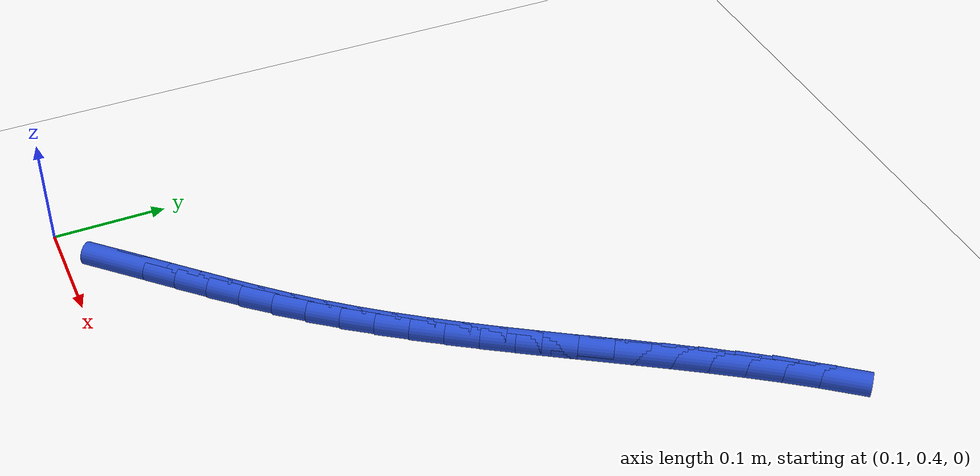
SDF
<sdf version="1.6">
 <world name="default">
  <model name="ground_plane">
   <static>1</static>
   <link name="link">
    <collision name="collision">
     <geometry><plane><normal>0 0 1</normal><size>100 100</size></plane></geometry>
     <surface><friction><ode><mu>100</mu><mu2>50</mu2></ode></friction></surface>
    </collision>
    <visual name="visual">
     <cast_shadows>0</cast_shadows>
     <geometry><plane><normal>0 0 1</normal><size>100 100</size></plane></geometry>
     <material>
      <script><uri>file://media/materials/scripts/gazebo.material</uri><name>Gazebo/WhiteGlow</name></script>
     </material>
    </visual>
   </link>
  </model>
  <model name="line">
   <link name="link_17">
    <pose>0.1712519552184155 0.4478693414919913 0.01 0 1.57 0.8027167475872313</pose>
    <collision name="collision">
     <geometry><cylinder><radius>0.01</radius><length>0.08</length></cylinder></geometry>
    </collision>
    <visual name="visual">
     <material>
      <script><name>Gazebo/Blue</name><uri>file://media/materials/scripts/gazebo.material</uri></script>
     </material>
     <geometry><cylinder><radius>0.01</radius><length>0.08</length></cylinder></geometry>
    </visual>
   </link>
   <link name="link_18">
    <pose>0.19212451881638715 0.46947768786923155 0.01 0 1.57 0.7991366152460926</pose>
    <collision name="collision">
     <geometry><cylinder><radius>0.01</radius><length>0.08</length></cylinder></geometry>
    </collision>
    <visual name="visual">
     <material>
      <script><name>Gazebo/Blue</name><uri>file://media/materials/scripts/gazebo.material</uri></script>
     </material>
     <geometry><cylinder><radius>0.01</radius><length>0.08</length></cylinder></geometry>
    </visual>
   </link>
   <link name="link_19">
    <pose>0.2131277063183702 0.4910660541997015 0.01 0 1.57 0.8032693308157284</pose>
    <collision name="collision">
     <geometry><cylinder><radius>0.01</radius><length>0.08</length></cylinder></geometry>
    </collision>
    <visual name="visual">
     <material>
      <script><name>Gazebo/Blue</name><uri>file://media/materials/scripts/gazebo.material</uri></script>
     </material>
     <geometry><cylinder><radius>0.01</radius><length>0.08</length></cylinder></geometry>
    </visual>
   </link>
   <link name="link_20">
    <pose>0.2340442954998635 0.5127439373765393 0.01 0 1.57 0.8151408192019713</pose>
    <collision name="collision">
     <geometry><cylinder><radius>0.01</radius><length>0.08</length></cylinder></geometry>
    </collision>
    <visual name="visual">
     <material>
      <script><name>Gazebo/Blue</name><uri>file://media/materials/scripts/gazebo.material</uri></script>
     </material>
     <geometry><cylinder><radius>0.01</radius><length>0.08</length></cylinder></geometry>
    </visual>
   </link>
   <link name="link_21">
    <pose>0.25465706413636585 0.5346208342928832 0.01 0 1.57 0.8348805298103994</pose>
    <collision name="collision">
     <geometry><cylinder><radius>0.01</radius><length>0.08</length></cylinder></geometry>
    </collision>
    <visual name="visual">
     <material>
      <script><name>Gazebo/Blue</name><uri>file://media/materials/scripts/gazebo.material</uri></script>
     </material>
     <geometry><cylinder><radius>0.01</radius><length>0.08</length></cylinder></geometry>
    </visual>
   </link>
   <link name="link_22">
    <pose>0.27474879000337593 0.5568062418418709 0.01 0 1.57 0.8626891926662084</pose>
    <collision name="collision">
     <geometry><cylinder><radius>0.01</radius><length>0.08</length></cylinder></geometry>
    </collision>
    <visual name="visual">
     <material>
      <script><name>Gazebo/Blue</name><uri>file://media/materials/scripts/gazebo.material</uri></script>
     </material>
     <geometry><cylinder><radius>0.01</radius><length>0.08</length></cylinder></geometry>
    </visual>
   </link>
   <link name="link_23">
    <pose>0.2941026314504822 0.5794094607349466 0.01 0 1.57 0.895433937974692</pose>
    <collision name="collision">
     <geometry><cylinder><radius>0.01</radius><length>0.08</length></cylinder></geometry>
    </collision>
    <visual name="visual">
     <material>
      <script><name>Gazebo/Blue</name><uri>file://media/materials/scripts/gazebo.material</uri></script>
     </material>
     <geometry><cylinder><radius>0.01</radius><length>0.08</length></cylinder></geometry>
    </visual>
   </link>
   <link name="link_24">
    <pose>0.3125928597046764 0.6024928240125467 0.01 0 1.57 0.9253701962714425</pose>
    <collision name="collision">
     <geometry><cylinder><radius>0.01</radius><length>0.08</length></cylinder></geometry>
    </collision>
    <visual name="visual">
     <material>
      <script><name>Gazebo/Blue</name><uri>file://media/materials/scripts/gazebo.material</uri></script>
     </material>
     <geometry><cylinder><radius>0.01</radius><length>0.08</length></cylinder></geometry>
    </visual>
   </link>
   <link name="link_25">
    <pose>0.33030240927161986 0.6260111011247189 0.01 0 1.57 0.951254259695157</pose>
    <collision name="collision">
     <geometry><cylinder><radius>0.01</radius><length>0.08</length></cylinder></geometry>
    </collision>
    <visual name="visual">
     <material>
      <script><name>Gazebo/Blue</name><uri>file://media/materials/scripts/gazebo.material</uri></script>
     </material>
     <geometry><cylinder><radius>0.01</radius><length>0.08</length></cylinder></geometry>
    </visual>
   </link>
   <link name="link_26">
    <pose>0.34734330098291955 0.6499040678452412 0.01 0 1.57 0.9729645868460641</pose>
    <collision name="collision">
     <geometry><cylinder><radius>0.01</radius><length>0.08</length></cylinder></geometry>
    </collision>
    <visual name="visual">
     <material>
      <script><name>Gazebo/Blue</name><uri>file://media/materials/scripts/gazebo.material</uri></script>
     </material>
     <geometry><cylinder><radius>0.01</radius><length>0.08</length></cylinder></geometry>
    </visual>
   </link>
   <link name="link_27">
    <pose>0.36382755567018255 0.6741114999478918 0.01 0 1.57 0.99042109532947</pose>
    <collision name="collision">
     <geometry><cylinder><radius>0.01</radius><length>0.08</length></cylinder></geometry>
    </collision>
    <visual name="visual">
     <material>
      <script><name>Gazebo/Blue</name><uri>file://media/materials/scripts/gazebo.material</uri></script>
     </material>
     <geometry><cylinder><radius>0.01</radius><length>0.08</length></cylinder></geometry>
    </visual>
   </link>
   <link name="link_28">
    <pose>0.37986719416501574 0.6985731732064483 0.01 0 1.57 1.0035748167725294</pose>
    <collision name="collision">
     <geometry><cylinder><radius>0.01</radius><length>0.08</length></cylinder></geometry>
    </collision>
    <visual name="visual">
     <material>
      <script><name>Gazebo/Blue</name><uri>file://media/materials/scripts/gazebo.material</uri></script>
     </material>
     <geometry><cylinder><radius>0.01</radius><length>0.08</length></cylinder></geometry>
    </visual>
   </link>
   <link name="link_29">
    <pose>0.3955742372990261 0.7232288633946887 0.01 0 1.57 1.012398882644535</pose>
    <collision name="collision">
     <geometry><cylinder><radius>0.01</radius><length>0.08</length></cylinder></geometry>
    </collision>
    <visual name="visual">
     <material>
      <script><name>Gazebo/Blue</name><uri>file://media/materials/scripts/gazebo.material</uri></script>
     </material>
     <geometry><cylinder><radius>0.01</radius><length>0.08</length></cylinder></geometry>
    </visual>
   </link>
   <link name="link_30">
    <pose>0.4110607059038206 0.7480183462863912 0.01 0 1.57 1.0168814070701326</pose>
    <collision name="collision">
     <geometry><cylinder><radius>0.01</radius><length>0.08</length></cylinder></geometry>
    </collision>
    <visual name="visual">
     <material>
      <script><name>Gazebo/Blue</name><uri>file://media/materials/scripts/gazebo.material</uri></script>
     </material>
     <geometry><cylinder><radius>0.01</radius><length>0.08</length></cylinder></geometry>
    </visual>
   </link>
   <link name="link_31">
    <pose>0.42643862081100586 0.7728813976553329 0.01 0 1.57 1.017020586156933</pose>
    <collision name="collision">
     <geometry><cylinder><radius>0.01</radius><length>0.08</length></cylinder></geometry>
    </collision>
    <visual name="visual">
     <material>
      <script><name>Gazebo/Blue</name><uri>file://media/materials/scripts/gazebo.material</uri></script>
     </material>
     <geometry><cylinder><radius>0.01</radius><length>0.08</length></cylinder></geometry>
    </visual>
   </link>
   <link name="link_32">
    <pose>0.44182000285218936 0.7977577932752928 0.01 0 1.57 1.0128221666371764</pose>
    <collision name="collision">
     <geometry><cylinder><radius>0.01</radius><length>0.08</length></cylinder></geometry>
    </collision>
    <visual name="visual">
     <material>
      <script><name>Gazebo/Blue</name><uri>file://media/materials/scripts/gazebo.material</uri></script>
     </material>
     <geometry><cylinder><radius>0.01</radius><length>0.08</length></cylinder></geometry>
    </visual>
   </link>
   <link name="link_33">
    <pose>0.4573168728589777 0.8225873089200484 0.01 0 1.57 1.0042993324878537</pose>
    <collision name="collision">
     <geometry><cylinder><radius>0.01</radius><length>0.08</length></cylinder></geometry>
    </collision>
    <visual name="visual">
     <material>
      <script><name>Gazebo/Blue</name><uri>file://media/materials/scripts/gazebo.material</uri></script>
     </material>
     <geometry><cylinder><radius>0.01</radius><length>0.08</length></cylinder></geometry>
    </visual>
   </link>
   <link name="link_34">
    <pose>0.47304125166297784 0.847309720363377 0.01 0 1.57 0.99146768256598</pose>
    <collision name="collision">
     <geometry><cylinder><radius>0.01</radius><length>0.08</length></cylinder></geometry>
    </collision>
    <visual name="visual">
     <material>
      <script><name>Gazebo/Blue</name><uri>file://media/materials/scripts/gazebo.material</uri></script>
     </material>
     <geometry><cylinder><radius>0.01</radius><length>0.08</length></cylinder></geometry>
    </visual>
   </link>
   <link name="link_35">
    <pose>0.4891052448480158 0.8718645413489473 0.01 0 1.57 0.9734752646828276</pose>
    <collision name="collision">
     <geometry><cylinder><radius>0.01</radius><length>0.08</length></cylinder></geometry>
    </collision>
    <visual name="visual">
     <material>
      <script><name>Gazebo/Blue</name><uri>file://media/materials/scripts/gazebo.material</uri></script>
     </material>
     <geometry><cylinder><radius>0.01</radius><length>0.08</length></cylinder></geometry>
    </visual>
   </link>
   <link name="link_36">
    <pose>0.5056311450640617 0.8961597900667133 0.01 0 1.57 0.9485860358934609</pose>
    <collision name="collision">
     <geometry><cylinder><radius>0.01</radius><length>0.08</length></cylinder></geometry>
    </collision>
    <visual name="visual">
     <material>
      <script><name>Gazebo/Blue</name><uri>file://media/materials/scripts/gazebo.material</uri></script>
     </material>
     <geometry><cylinder><radius>0.01</radius><length>0.08</length></cylinder></geometry>
    </visual>
   </link>
   <link name="link_37">
    <pose>0.5227609933156064 0.9200424283286979 0.01 0 1.57 0.9165215642107967</pose>
    <collision name="collision">
     <geometry><cylinder><radius>0.01</radius><length>0.08</length></cylinder></geometry>
    </collision>
    <visual name="visual">
     <material>
      <script><name>Gazebo/Blue</name><uri>file://media/materials/scripts/gazebo.material</uri></script>
     </material>
     <geometry><cylinder><radius>0.01</radius><length>0.08</length></cylinder></geometry>
    </visual>
   </link>
  </model>
 </world>
</sdf>
